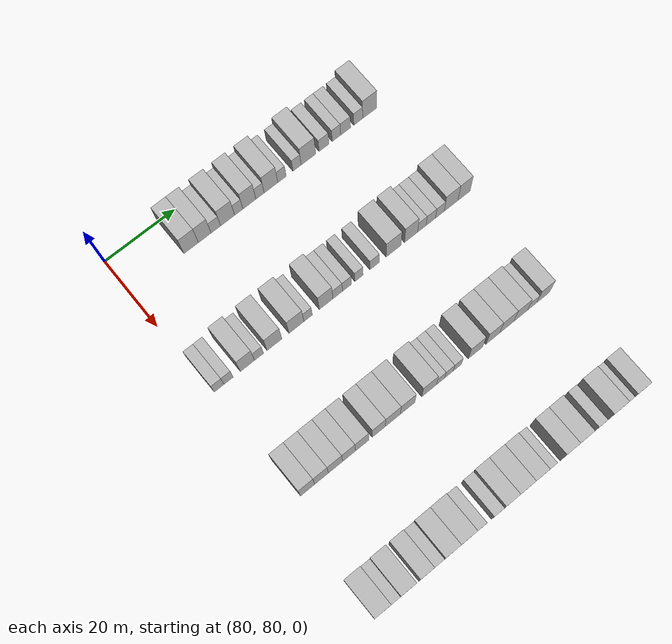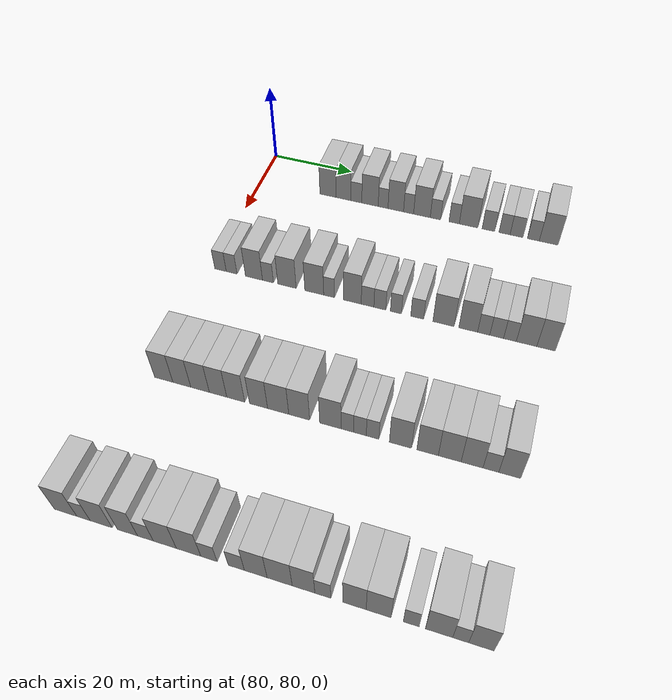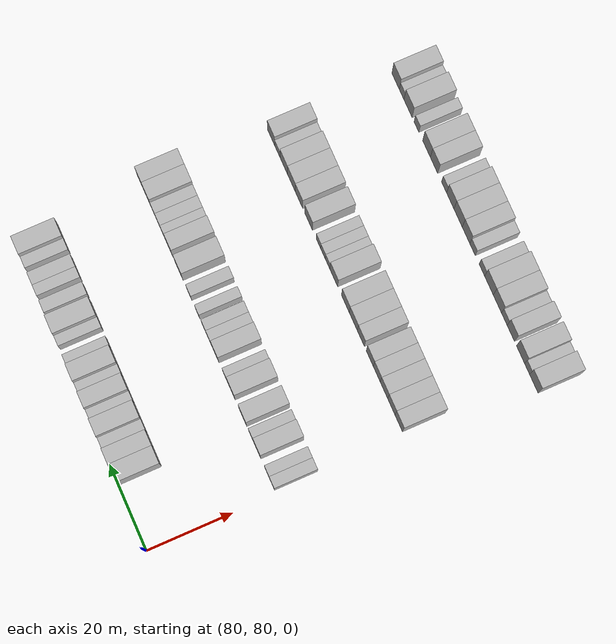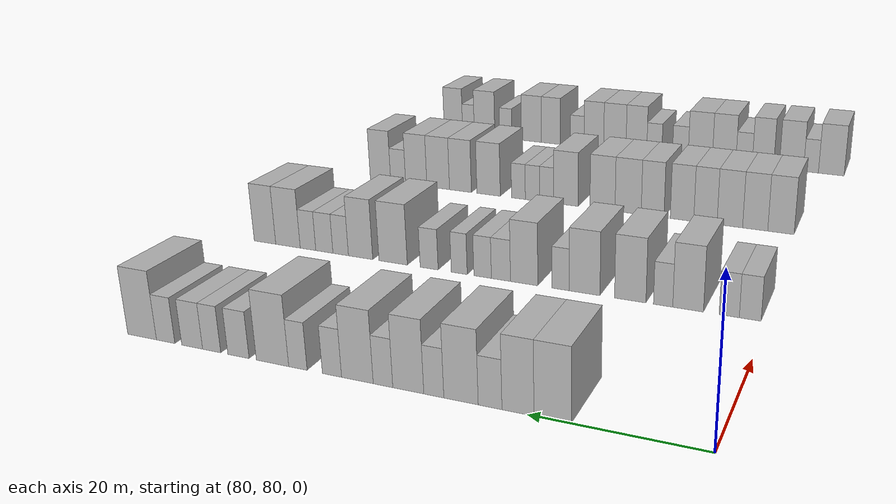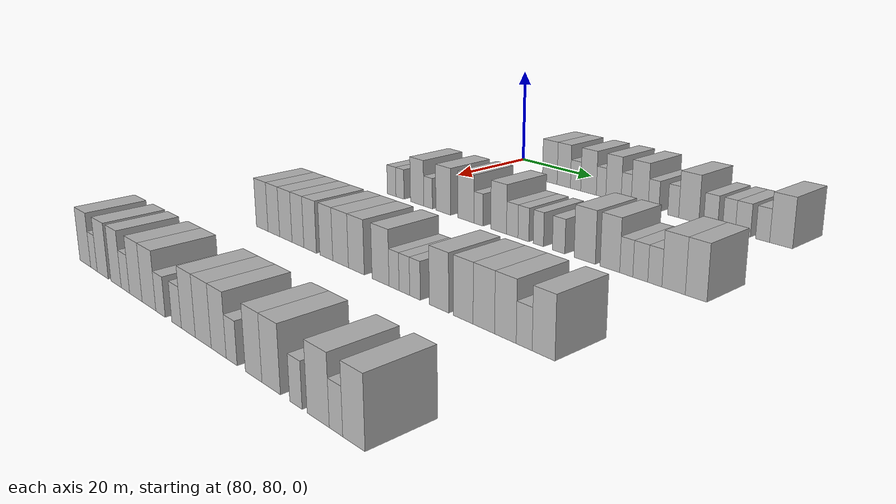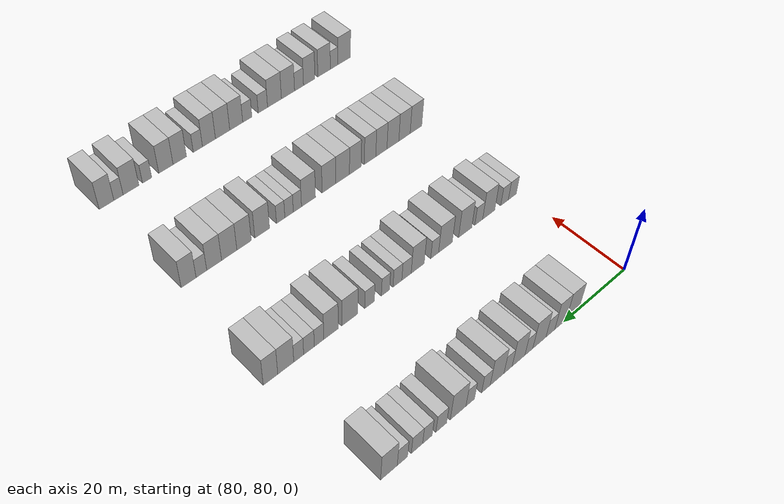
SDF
<sdf version="1.6">
 <world name="default">
  <model name="building_581">
   <static>1</static>
   <pose>85.0000 97.1983 0 0.000000 0.000000 0.000000</pose>
   <link name="link">
    <pose>0 0 4.50 0 0 0</pose>
    <collision name="collision"><geometry><box><size>10.0000 4.1444 9.0000</size></box></geometry></collision>
    <visual name="visual">
     <cast_shadows>0</cast_shadows>
     <geometry><box><size>10.0000 4.1444 9.0000</size></box></geometry>
     <material>
      <script>
       <uri>model://HANNAS_wall/materials/scripts</uri>
       <uri>model://HANNAS_wall/materials/textures</uri>
       <name>vrc/HANNAS_wall</name>
      </script>
     </material>
    </visual>
   </link>
  </model>
  <model name="building_582">
   <static>1</static>
   <pose>85.0000 101.0959 0 0.000000 0.000000 0.000000</pose>
   <link name="link">
    <pose>0 0 4.50 0 0 0</pose>
    <collision name="collision"><geometry><box><size>10.0000 3.6508 9.0000</size></box></geometry></collision>
    <visual name="visual">
     <cast_shadows>0</cast_shadows>
     <geometry><box><size>10.0000 3.6508 9.0000</size></box></geometry>
     <material>
      <script>
       <uri>model://HANNAS_wall/materials/scripts</uri>
       <uri>model://HANNAS_wall/materials/textures</uri>
       <name>vrc/HANNAS_wall</name>
      </script>
     </material>
    </visual>
   </link>
  </model>
  <model name="building_583">
   <static>1</static>
   <pose>85.0000 104.2976 0 0.000000 0.000000 0.000000</pose>
   <link name="link">
    <pose>0 0 3.00 0 0 0</pose>
    <collision name="collision"><geometry><box><size>10.0000 2.7526 6.0000</size></box></geometry></collision>
    <visual name="visual">
     <cast_shadows>0</cast_shadows>
     <geometry><box><size>10.0000 2.7526 6.0000</size></box></geometry>
     <material>
      <script>
       <uri>model://HANNAS_wall/materials/scripts</uri>
       <uri>model://HANNAS_wall/materials/textures</uri>
       <name>vrc/HANNAS_wall</name>
      </script>
     </material>
    </visual>
   </link>
  </model>
  <model name="building_584">
   <static>1</static>
   <pose>85.0000 107.7119 0 0.000000 0.000000 0.000000</pose>
   <link name="link">
    <pose>0 0 4.50 0 0 0</pose>
    <collision name="collision"><geometry><box><size>10.0000 4.0760 9.0000</size></box></geometry></collision>
    <visual name="visual">
     <cast_shadows>0</cast_shadows>
     <geometry><box><size>10.0000 4.0760 9.0000</size></box></geometry>
     <material>
      <script>
       <uri>model://HANNAS_wall/materials/scripts</uri>
       <uri>model://HANNAS_wall/materials/textures</uri>
       <name>vrc/HANNAS_wall</name>
      </script>
     </material>
    </visual>
   </link>
  </model>
  <model name="building_585">
   <static>1</static>
   <pose>85.0000 110.9563 0 0.000000 0.000000 0.000000</pose>
   <link name="link">
    <pose>0 0 3.00 0 0 0</pose>
    <collision name="collision"><geometry><box><size>10.0000 2.4129 6.0000</size></box></geometry></collision>
    <visual name="visual">
     <cast_shadows>0</cast_shadows>
     <geometry><box><size>10.0000 2.4129 6.0000</size></box></geometry>
     <material>
      <script>
       <uri>model://HANNAS_wall/materials/scripts</uri>
       <uri>model://HANNAS_wall/materials/textures</uri>
       <name>vrc/HANNAS_wall</name>
      </script>
     </material>
    </visual>
   </link>
  </model>
  <model name="building_586">
   <static>1</static>
   <pose>85.0000 114.0671 0 0.000000 0.000000 0.000000</pose>
   <link name="link">
    <pose>0 0 4.50 0 0 0</pose>
    <collision name="collision"><geometry><box><size>10.0000 3.8086 9.0000</size></box></geometry></collision>
    <visual name="visual">
     <cast_shadows>0</cast_shadows>
     <geometry><box><size>10.0000 3.8086 9.0000</size></box></geometry>
     <material>
      <script>
       <uri>model://HANNAS_wall/materials/scripts</uri>
       <uri>model://HANNAS_wall/materials/textures</uri>
       <name>vrc/HANNAS_wall</name>
      </script>
     </material>
    </visual>
   </link>
  </model>
  <model name="building_587">
   <static>1</static>
   <pose>85.0000 117.1927 0 0.000000 0.000000 0.000000</pose>
   <link name="link">
    <pose>0 0 3.00 0 0 0</pose>
    <collision name="collision"><geometry><box><size>10.0000 2.4426 6.0000</size></box></geometry></collision>
    <visual name="visual">
     <cast_shadows>0</cast_shadows>
     <geometry><box><size>10.0000 2.4426 6.0000</size></box></geometry>
     <material>
      <script>
       <uri>model://HANNAS_wall/materials/scripts</uri>
       <uri>model://HANNAS_wall/materials/textures</uri>
       <name>vrc/HANNAS_wall</name>
      </script>
     </material>
    </visual>
   </link>
  </model>
  <model name="building_588">
   <static>1</static>
   <pose>85.0000 120.4282 0 0.000000 0.000000 0.000000</pose>
   <link name="link">
    <pose>0 0 4.50 0 0 0</pose>
    <collision name="collision"><geometry><box><size>10.0000 4.0283 9.0000</size></box></geometry></collision>
    <visual name="visual">
     <cast_shadows>0</cast_shadows>
     <geometry><box><size>10.0000 4.0283 9.0000</size></box></geometry>
     <material>
      <script>
       <uri>model://HANNAS_wall/materials/scripts</uri>
       <uri>model://HANNAS_wall/materials/textures</uri>
       <name>vrc/HANNAS_wall</name>
      </script>
     </material>
    </visual>
   </link>
  </model>
  <model name="building_589">
   <static>1</static>
   <pose>85.0000 123.6835 0 0.000000 0.000000 0.000000</pose>
   <link name="link">
    <pose>0 0 3.00 0 0 0</pose>
    <collision name="collision"><geometry><box><size>10.0000 2.4823 6.0000</size></box></geometry></collision>
    <visual name="visual">
     <cast_shadows>0</cast_shadows>
     <geometry><box><size>10.0000 2.4823 6.0000</size></box></geometry>
     <material>
      <script>
       <uri>model://HANNAS_wall/materials/scripts</uri>
       <uri>model://HANNAS_wall/materials/textures</uri>
       <name>vrc/HANNAS_wall</name>
      </script>
     </material>
    </visual>
   </link>
  </model>
  <model name="building_590">
   <static>1</static>
   <pose>85.0000 128.1484 0 0.000000 0.000000 0.000000</pose>
   <link name="link">
    <pose>0 0 3.00 0 0 0</pose>
    <collision name="collision"><geometry><box><size>10.0000 2.4476 6.0000</size></box></geometry></collision>
    <visual name="visual">
     <cast_shadows>0</cast_shadows>
     <geometry><box><size>10.0000 2.4476 6.0000</size></box></geometry>
     <material>
      <script>
       <uri>model://HANNAS_wall/materials/scripts</uri>
       <uri>model://HANNAS_wall/materials/textures</uri>
       <name>vrc/HANNAS_wall</name>
      </script>
     </material>
    </visual>
   </link>
  </model>
  <model name="building_591">
   <static>1</static>
   <pose>85.0000 131.5574 0 0.000000 0.000000 0.000000</pose>
   <link name="link">
    <pose>0 0 4.50 0 0 0</pose>
    <collision name="collision"><geometry><box><size>10.0000 4.3704 9.0000</size></box></geometry></collision>
    <visual name="visual">
     <cast_shadows>0</cast_shadows>
     <geometry><box><size>10.0000 4.3704 9.0000</size></box></geometry>
     <material>
      <script>
       <uri>model://HANNAS_wall/materials/scripts</uri>
       <uri>model://HANNAS_wall/materials/textures</uri>
       <name>vrc/HANNAS_wall</name>
      </script>
     </material>
    </visual>
   </link>
  </model>
  <model name="building_592">
   <static>1</static>
   <pose>85.0000 136.2152 0 0.000000 0.000000 0.000000</pose>
   <link name="link">
    <pose>0 0 3.00 0 0 0</pose>
    <collision name="collision"><geometry><box><size>10.0000 2.9452 6.0000</size></box></geometry></collision>
    <visual name="visual">
     <cast_shadows>0</cast_shadows>
     <geometry><box><size>10.0000 2.9452 6.0000</size></box></geometry>
     <material>
      <script>
       <uri>model://HANNAS_wall/materials/scripts</uri>
       <uri>model://HANNAS_wall/materials/textures</uri>
       <name>vrc/HANNAS_wall</name>
      </script>
     </material>
    </visual>
   </link>
  </model>
  <model name="building_593">
   <static>1</static>
   <pose>85.0000 139.9684 0 0.000000 0.000000 0.000000</pose>
   <link name="link">
    <pose>0 0 3.00 0 0 0</pose>
    <collision name="collision"><geometry><box><size>10.0000 2.5612 6.0000</size></box></geometry></collision>
    <visual name="visual">
     <cast_shadows>0</cast_shadows>
     <geometry><box><size>10.0000 2.5612 6.0000</size></box></geometry>
     <material>
      <script>
       <uri>model://HANNAS_wall/materials/scripts</uri>
       <uri>model://HANNAS_wall/materials/textures</uri>
       <name>vrc/HANNAS_wall</name>
      </script>
     </material>
    </visual>
   </link>
  </model>
  <model name="building_594">
   <static>1</static>
   <pose>85.0000 142.7461 0 0.000000 0.000000 0.000000</pose>
   <link name="link">
    <pose>0 0 3.00 0 0 0</pose>
    <collision name="collision"><geometry><box><size>10.0000 2.9942 6.0000</size></box></geometry></collision>
    <visual name="visual">
     <cast_shadows>0</cast_shadows>
     <geometry><box><size>10.0000 2.9942 6.0000</size></box></geometry>
     <material>
      <script>
       <uri>model://HANNAS_wall/materials/scripts</uri>
       <uri>model://HANNAS_wall/materials/textures</uri>
       <name>vrc/HANNAS_wall</name>
      </script>
     </material>
    </visual>
   </link>
  </model>
  <model name="building_595">
   <static>1</static>
   <pose>85.0000 146.5897 0 0.000000 0.000000 0.000000</pose>
   <link name="link">
    <pose>0 0 3.00 0 0 0</pose>
    <collision name="collision"><geometry><box><size>10.0000 2.6931 6.0000</size></box></geometry></collision>
    <visual name="visual">
     <cast_shadows>0</cast_shadows>
     <geometry><box><size>10.0000 2.6931 6.0000</size></box></geometry>
     <material>
      <script>
       <uri>model://HANNAS_wall/materials/scripts</uri>
       <uri>model://HANNAS_wall/materials/textures</uri>
       <name>vrc/HANNAS_wall</name>
      </script>
     </material>
    </visual>
   </link>
  </model>
  <model name="building_596">
   <static>1</static>
   <pose>85.0000 150.0692 0 0.000000 0.000000 0.000000</pose>
   <link name="link">
    <pose>0 0 4.50 0 0 0</pose>
    <collision name="collision"><geometry><box><size>10.0000 4.2658 9.0000</size></box></geometry></collision>
    <visual name="visual">
     <cast_shadows>0</cast_shadows>
     <geometry><box><size>10.0000 4.2658 9.0000</size></box></geometry>
     <material>
      <script>
       <uri>model://HANNAS_wall/materials/scripts</uri>
       <uri>model://HANNAS_wall/materials/textures</uri>
       <name>vrc/HANNAS_wall</name>
      </script>
     </material>
    </visual>
   </link>
  </model>
  <model name="building_800">
   <static>1</static>
   <pose>115.0000 82.2061 0 0.000000 0.000000 0.000000</pose>
   <link name="link">
    <pose>0 0 3.00 0 0 0</pose>
    <collision name="collision"><geometry><box><size>10.0000 2.7353 6.0000</size></box></geometry></collision>
    <visual name="visual">
     <cast_shadows>0</cast_shadows>
     <geometry><box><size>10.0000 2.7353 6.0000</size></box></geometry>
     <material>
      <script>
       <uri>model://HANNAS_wall/materials/scripts</uri>
       <uri>model://HANNAS_wall/materials/textures</uri>
       <name>vrc/HANNAS_wall</name>
      </script>
     </material>
    </visual>
   </link>
  </model>
  <model name="building_801">
   <static>1</static>
   <pose>115.0000 84.8523 0 0.000000 0.000000 0.000000</pose>
   <link name="link">
    <pose>0 0 3.00 0 0 0</pose>
    <collision name="collision"><geometry><box><size>10.0000 2.5571 6.0000</size></box></geometry></collision>
    <visual name="visual">
     <cast_shadows>0</cast_shadows>
     <geometry><box><size>10.0000 2.5571 6.0000</size></box></geometry>
     <material>
      <script>
       <uri>model://HANNAS_wall/materials/scripts</uri>
       <uri>model://HANNAS_wall/materials/textures</uri>
       <name>vrc/HANNAS_wall</name>
      </script>
     </material>
    </visual>
   </link>
  </model>
  <model name="building_802">
   <static>1</static>
   <pose>115.0000 90.1282 0 0.000000 0.000000 0.000000</pose>
   <link name="link">
    <pose>0 0 4.50 0 0 0</pose>
    <collision name="collision"><geometry><box><size>10.0000 3.9948 9.0000</size></box></geometry></collision>
    <visual name="visual">
     <cast_shadows>0</cast_shadows>
     <geometry><box><size>10.0000 3.9948 9.0000</size></box></geometry>
     <material>
      <script>
       <uri>model://HANNAS_wall/materials/scripts</uri>
       <uri>model://HANNAS_wall/materials/textures</uri>
       <name>vrc/HANNAS_wall</name>
      </script>
     </material>
    </visual>
   </link>
  </model>
  <model name="building_803">
   <static>1</static>
   <pose>115.0000 93.4018 0 0.000000 0.000000 0.000000</pose>
   <link name="link">
    <pose>0 0 3.00 0 0 0</pose>
    <collision name="collision"><geometry><box><size>10.0000 2.5523 6.0000</size></box></geometry></collision>
    <visual name="visual">
     <cast_shadows>0</cast_shadows>
     <geometry><box><size>10.0000 2.5523 6.0000</size></box></geometry>
     <material>
      <script>
       <uri>model://HANNAS_wall/materials/scripts</uri>
       <uri>model://HANNAS_wall/materials/textures</uri>
       <name>vrc/HANNAS_wall</name>
      </script>
     </material>
    </visual>
   </link>
  </model>
  <model name="building_804">
   <static>1</static>
   <pose>115.0000 97.7947 0 0.000000 0.000000 0.000000</pose>
   <link name="link">
    <pose>0 0 4.50 0 0 0</pose>
    <collision name="collision"><geometry><box><size>10.0000 4.2335 9.0000</size></box></geometry></collision>
    <visual name="visual">
     <cast_shadows>0</cast_shadows>
     <geometry><box><size>10.0000 4.2335 9.0000</size></box></geometry>
     <material>
      <script>
       <uri>model://HANNAS_wall/materials/scripts</uri>
       <uri>model://HANNAS_wall/materials/textures</uri>
       <name>vrc/HANNAS_wall</name>
      </script>
     </material>
    </visual>
   </link>
  </model>
  <model name="building_805">
   <static>1</static>
   <pose>115.0000 104.0559 0 0.000000 0.000000 0.000000</pose>
   <link name="link">
    <pose>0 0 4.50 0 0 0</pose>
    <collision name="collision"><geometry><box><size>10.0000 4.2888 9.0000</size></box></geometry></collision>
    <visual name="visual">
     <cast_shadows>0</cast_shadows>
     <geometry><box><size>10.0000 4.2888 9.0000</size></box></geometry>
     <material>
      <script>
       <uri>model://HANNAS_wall/materials/scripts</uri>
       <uri>model://HANNAS_wall/materials/textures</uri>
       <name>vrc/HANNAS_wall</name>
      </script>
     </material>
    </visual>
   </link>
  </model>
  <model name="building_806">
   <static>1</static>
   <pose>115.0000 107.4186 0 0.000000 0.000000 0.000000</pose>
   <link name="link">
    <pose>0 0 3.00 0 0 0</pose>
    <collision name="collision"><geometry><box><size>10.0000 2.4366 6.0000</size></box></geometry></collision>
    <visual name="visual">
     <cast_shadows>0</cast_shadows>
     <geometry><box><size>10.0000 2.4366 6.0000</size></box></geometry>
     <material>
      <script>
       <uri>model://HANNAS_wall/materials/scripts</uri>
       <uri>model://HANNAS_wall/materials/textures</uri>
       <name>vrc/HANNAS_wall</name>
      </script>
     </material>
    </visual>
   </link>
  </model>
  <model name="building_807">
   <static>1</static>
   <pose>115.0000 112.6143 0 0.000000 0.000000 0.000000</pose>
   <link name="link">
    <pose>0 0 4.50 0 0 0</pose>
    <collision name="collision"><geometry><box><size>10.0000 3.9548 9.0000</size></box></geometry></collision>
    <visual name="visual">
     <cast_shadows>0</cast_shadows>
     <geometry><box><size>10.0000 3.9548 9.0000</size></box></geometry>
     <material>
      <script>
       <uri>model://HANNAS_wall/materials/scripts</uri>
       <uri>model://HANNAS_wall/materials/textures</uri>
       <name>vrc/HANNAS_wall</name>
      </script>
     </material>
    </visual>
   </link>
  </model>
  <model name="building_808">
   <static>1</static>
   <pose>115.0000 115.9929 0 0.000000 0.000000 0.000000</pose>
   <link name="link">
    <pose>0 0 3.00 0 0 0</pose>
    <collision name="collision"><geometry><box><size>10.0000 2.8022 6.0000</size></box></geometry></collision>
    <visual name="visual">
     <cast_shadows>0</cast_shadows>
     <geometry><box><size>10.0000 2.8022 6.0000</size></box></geometry>
     <material>
      <script>
       <uri>model://HANNAS_wall/materials/scripts</uri>
       <uri>model://HANNAS_wall/materials/textures</uri>
       <name>vrc/HANNAS_wall</name>
      </script>
     </material>
    </visual>
   </link>
  </model>
  <model name="building_809">
   <static>1</static>
   <pose>115.0000 118.6966 0 0.000000 0.000000 0.000000</pose>
   <link name="link">
    <pose>0 0 3.00 0 0 0</pose>
    <collision name="collision"><geometry><box><size>10.0000 2.6054 6.0000</size></box></geometry></collision>
    <visual name="visual">
     <cast_shadows>0</cast_shadows>
     <geometry><box><size>10.0000 2.6054 6.0000</size></box></geometry>
     <material>
      <script>
       <uri>model://HANNAS_wall/materials/scripts</uri>
       <uri>model://HANNAS_wall/materials/textures</uri>
       <name>vrc/HANNAS_wall</name>
      </script>
     </material>
    </visual>
   </link>
  </model>
  <model name="building_810">
   <static>1</static>
   <pose>115.0000 122.2053 0 0.000000 0.000000 0.000000</pose>
   <link name="link">
    <pose>0 0 3.00 0 0 0</pose>
    <collision name="collision"><geometry><box><size>10.0000 2.4119 6.0000</size></box></geometry></collision>
    <visual name="visual">
     <cast_shadows>0</cast_shadows>
     <geometry><box><size>10.0000 2.4119 6.0000</size></box></geometry>
     <material>
      <script>
       <uri>model://HANNAS_wall/materials/scripts</uri>
       <uri>model://HANNAS_wall/materials/textures</uri>
       <name>vrc/HANNAS_wall</name>
      </script>
     </material>
    </visual>
   </link>
  </model>
  <model name="building_811">
   <static>1</static>
   <pose>115.0000 126.7994 0 0.000000 0.000000 0.000000</pose>
   <link name="link">
    <pose>0 0 3.00 0 0 0</pose>
    <collision name="collision"><geometry><box><size>10.0000 2.7763 6.0000</size></box></geometry></collision>
    <visual name="visual">
     <cast_shadows>0</cast_shadows>
     <geometry><box><size>10.0000 2.7763 6.0000</size></box></geometry>
     <material>
      <script>
       <uri>model://HANNAS_wall/materials/scripts</uri>
       <uri>model://HANNAS_wall/materials/textures</uri>
       <name>vrc/HANNAS_wall</name>
      </script>
     </material>
    </visual>
   </link>
  </model>
  <model name="building_812">
   <static>1</static>
   <pose>115.0000 132.4303 0 0.000000 0.000000 0.000000</pose>
   <link name="link">
    <pose>0 0 4.50 0 0 0</pose>
    <collision name="collision"><geometry><box><size>10.0000 4.4856 9.0000</size></box></geometry></collision>
    <visual name="visual">
     <cast_shadows>0</cast_shadows>
     <geometry><box><size>10.0000 4.4856 9.0000</size></box></geometry>
     <material>
      <script>
       <uri>model://HANNAS_wall/materials/scripts</uri>
       <uri>model://HANNAS_wall/materials/textures</uri>
       <name>vrc/HANNAS_wall</name>
      </script>
     </material>
    </visual>
   </link>
  </model>
  <model name="building_813">
   <static>1</static>
   <pose>115.0000 137.6419 0 0.000000 0.000000 0.000000</pose>
   <link name="link">
    <pose>0 0 4.50 0 0 0</pose>
    <collision name="collision"><geometry><box><size>10.0000 3.9376 9.0000</size></box></geometry></collision>
    <visual name="visual">
     <cast_shadows>0</cast_shadows>
     <geometry><box><size>10.0000 3.9376 9.0000</size></box></geometry>
     <material>
      <script>
       <uri>model://HANNAS_wall/materials/scripts</uri>
       <uri>model://HANNAS_wall/materials/textures</uri>
       <name>vrc/HANNAS_wall</name>
      </script>
     </material>
    </visual>
   </link>
  </model>
  <model name="building_814">
   <static>1</static>
   <pose>115.0000 140.8817 0 0.000000 0.000000 0.000000</pose>
   <link name="link">
    <pose>0 0 3.00 0 0 0</pose>
    <collision name="collision"><geometry><box><size>10.0000 2.5421 6.0000</size></box></geometry></collision>
    <visual name="visual">
     <cast_shadows>0</cast_shadows>
     <geometry><box><size>10.0000 2.5421 6.0000</size></box></geometry>
     <material>
      <script>
       <uri>model://HANNAS_wall/materials/scripts</uri>
       <uri>model://HANNAS_wall/materials/textures</uri>
       <name>vrc/HANNAS_wall</name>
      </script>
     </material>
    </visual>
   </link>
  </model>
  <model name="building_815">
   <static>1</static>
   <pose>115.0000 143.5747 0 0.000000 0.000000 0.000000</pose>
   <link name="link">
    <pose>0 0 3.00 0 0 0</pose>
    <collision name="collision"><geometry><box><size>10.0000 2.8439 6.0000</size></box></geometry></collision>
    <visual name="visual">
     <cast_shadows>0</cast_shadows>
     <geometry><box><size>10.0000 2.8439 6.0000</size></box></geometry>
     <material>
      <script>
       <uri>model://HANNAS_wall/materials/scripts</uri>
       <uri>model://HANNAS_wall/materials/textures</uri>
       <name>vrc/HANNAS_wall</name>
      </script>
     </material>
    </visual>
   </link>
  </model>
  <model name="building_816">
   <static>1</static>
   <pose>115.0000 146.3027 0 0.000000 0.000000 0.000000</pose>
   <link name="link">
    <pose>0 0 3.00 0 0 0</pose>
    <collision name="collision"><geometry><box><size>10.0000 2.6120 6.0000</size></box></geometry></collision>
    <visual name="visual">
     <cast_shadows>0</cast_shadows>
     <geometry><box><size>10.0000 2.6120 6.0000</size></box></geometry>
     <material>
      <script>
       <uri>model://HANNAS_wall/materials/scripts</uri>
       <uri>model://HANNAS_wall/materials/textures</uri>
       <name>vrc/HANNAS_wall</name>
      </script>
     </material>
    </visual>
   </link>
  </model>
  <model name="building_817">
   <static>1</static>
   <pose>115.0000 149.6972 0 0.000000 0.000000 0.000000</pose>
   <link name="link">
    <pose>0 0 4.50 0 0 0</pose>
    <collision name="collision"><geometry><box><size>10.0000 4.1771 9.0000</size></box></geometry></collision>
    <visual name="visual">
     <cast_shadows>0</cast_shadows>
     <geometry><box><size>10.0000 4.1771 9.0000</size></box></geometry>
     <material>
      <script>
       <uri>model://HANNAS_wall/materials/scripts</uri>
       <uri>model://HANNAS_wall/materials/textures</uri>
       <name>vrc/HANNAS_wall</name>
      </script>
     </material>
    </visual>
   </link>
  </model>
  <model name="building_818">
   <static>1</static>
   <pose>115.0000 153.6468 0 0.000000 0.000000 0.000000</pose>
   <link name="link">
    <pose>0 0 4.50 0 0 0</pose>
    <collision name="collision"><geometry><box><size>10.0000 3.7222 9.0000</size></box></geometry></collision>
    <visual name="visual">
     <cast_shadows>0</cast_shadows>
     <geometry><box><size>10.0000 3.7222 9.0000</size></box></geometry>
     <material>
      <script>
       <uri>model://HANNAS_wall/materials/scripts</uri>
       <uri>model://HANNAS_wall/materials/textures</uri>
       <name>vrc/HANNAS_wall</name>
      </script>
     </material>
    </visual>
   </link>
  </model>
  <model name="building_1021">
   <static>1</static>
   <pose>145.0000 83.2522 0 0.000000 0.000000 0.000000</pose>
   <link name="link">
    <pose>0 0 4.50 0 0 0</pose>
    <collision name="collision"><geometry><box><size>10.0000 3.9444 9.0000</size></box></geometry></collision>
    <visual name="visual">
     <cast_shadows>0</cast_shadows>
     <geometry><box><size>10.0000 3.9444 9.0000</size></box></geometry>
     <material>
      <script>
       <uri>model://HANNAS_wall/materials/scripts</uri>
       <uri>model://HANNAS_wall/materials/textures</uri>
       <name>vrc/HANNAS_wall</name>
      </script>
     </material>
    </visual>
   </link>
  </model>
  <model name="building_1022">
   <static>1</static>
   <pose>145.0000 87.1303 0 0.000000 0.000000 0.000000</pose>
   <link name="link">
    <pose>0 0 4.50 0 0 0</pose>
    <collision name="collision"><geometry><box><size>10.0000 3.8118 9.0000</size></box></geometry></collision>
    <visual name="visual">
     <cast_shadows>0</cast_shadows>
     <geometry><box><size>10.0000 3.8118 9.0000</size></box></geometry>
     <material>
      <script>
       <uri>model://HANNAS_wall/materials/scripts</uri>
       <uri>model://HANNAS_wall/materials/textures</uri>
       <name>vrc/HANNAS_wall</name>
      </script>
     </material>
    </visual>
   </link>
  </model>
  <model name="building_1023">
   <static>1</static>
   <pose>145.0000 91.0033 0 0.000000 0.000000 0.000000</pose>
   <link name="link">
    <pose>0 0 4.50 0 0 0</pose>
    <collision name="collision"><geometry><box><size>10.0000 3.9341 9.0000</size></box></geometry></collision>
    <visual name="visual">
     <cast_shadows>0</cast_shadows>
     <geometry><box><size>10.0000 3.9341 9.0000</size></box></geometry>
     <material>
      <script>
       <uri>model://HANNAS_wall/materials/scripts</uri>
       <uri>model://HANNAS_wall/materials/textures</uri>
       <name>vrc/HANNAS_wall</name>
      </script>
     </material>
    </visual>
   </link>
  </model>
  <model name="building_1024">
   <static>1</static>
   <pose>145.0000 94.7915 0 0.000000 0.000000 0.000000</pose>
   <link name="link">
    <pose>0 0 4.50 0 0 0</pose>
    <collision name="collision"><geometry><box><size>10.0000 3.6425 9.0000</size></box></geometry></collision>
    <visual name="visual">
     <cast_shadows>0</cast_shadows>
     <geometry><box><size>10.0000 3.6425 9.0000</size></box></geometry>
     <material>
      <script>
       <uri>model://HANNAS_wall/materials/scripts</uri>
       <uri>model://HANNAS_wall/materials/textures</uri>
       <name>vrc/HANNAS_wall</name>
      </script>
     </material>
    </visual>
   </link>
  </model>
  <model name="building_1025">
   <static>1</static>
   <pose>145.0000 98.4766 0 0.000000 0.000000 0.000000</pose>
   <link name="link">
    <pose>0 0 4.50 0 0 0</pose>
    <collision name="collision"><geometry><box><size>10.0000 3.7275 9.0000</size></box></geometry></collision>
    <visual name="visual">
     <cast_shadows>0</cast_shadows>
     <geometry><box><size>10.0000 3.7275 9.0000</size></box></geometry>
     <material>
      <script>
       <uri>model://HANNAS_wall/materials/scripts</uri>
       <uri>model://HANNAS_wall/materials/textures</uri>
       <name>vrc/HANNAS_wall</name>
      </script>
     </material>
    </visual>
   </link>
  </model>
  <model name="building_1026">
   <static>1</static>
   <pose>145.0000 103.1838 0 0.000000 0.000000 0.000000</pose>
   <link name="link">
    <pose>0 0 4.50 0 0 0</pose>
    <collision name="collision"><geometry><box><size>10.0000 3.6869 9.0000</size></box></geometry></collision>
    <visual name="visual">
     <cast_shadows>0</cast_shadows>
     <geometry><box><size>10.0000 3.6869 9.0000</size></box></geometry>
     <material>
      <script>
       <uri>model://HANNAS_wall/materials/scripts</uri>
       <uri>model://HANNAS_wall/materials/textures</uri>
       <name>vrc/HANNAS_wall</name>
      </script>
     </material>
    </visual>
   </link>
  </model>
  <model name="building_1027">
   <static>1</static>
   <pose>145.0000 107.1738 0 0.000000 0.000000 0.000000</pose>
   <link name="link">
    <pose>0 0 4.50 0 0 0</pose>
    <collision name="collision"><geometry><box><size>10.0000 4.2933 9.0000</size></box></geometry></collision>
    <visual name="visual">
     <cast_shadows>0</cast_shadows>
     <geometry><box><size>10.0000 4.2933 9.0000</size></box></geometry>
     <material>
      <script>
       <uri>model://HANNAS_wall/materials/scripts</uri>
       <uri>model://HANNAS_wall/materials/textures</uri>
       <name>vrc/HANNAS_wall</name>
      </script>
     </material>
    </visual>
   </link>
  </model>
  <model name="building_1028">
   <static>1</static>
   <pose>145.0000 111.4127 0 0.000000 0.000000 0.000000</pose>
   <link name="link">
    <pose>0 0 4.50 0 0 0</pose>
    <collision name="collision"><geometry><box><size>10.0000 4.1844 9.0000</size></box></geometry></collision>
    <visual name="visual">
     <cast_shadows>0</cast_shadows>
     <geometry><box><size>10.0000 4.1844 9.0000</size></box></geometry>
     <material>
      <script>
       <uri>model://HANNAS_wall/materials/scripts</uri>
       <uri>model://HANNAS_wall/materials/textures</uri>
       <name>vrc/HANNAS_wall</name>
      </script>
     </material>
    </visual>
   </link>
  </model>
  <model name="building_1029">
   <static>1</static>
   <pose>145.0000 117.6127 0 0.000000 0.000000 0.000000</pose>
   <link name="link">
    <pose>0 0 4.50 0 0 0</pose>
    <collision name="collision"><geometry><box><size>10.0000 4.2157 9.0000</size></box></geometry></collision>
    <visual name="visual">
     <cast_shadows>0</cast_shadows>
     <geometry><box><size>10.0000 4.2157 9.0000</size></box></geometry>
     <material>
      <script>
       <uri>model://HANNAS_wall/materials/scripts</uri>
       <uri>model://HANNAS_wall/materials/textures</uri>
       <name>vrc/HANNAS_wall</name>
      </script>
     </material>
    </visual>
   </link>
  </model>
  <model name="building_1030">
   <static>1</static>
   <pose>145.0000 120.9268 0 0.000000 0.000000 0.000000</pose>
   <link name="link">
    <pose>0 0 3.00 0 0 0</pose>
    <collision name="collision"><geometry><box><size>10.0000 2.4125 6.0000</size></box></geometry></collision>
    <visual name="visual">
     <cast_shadows>0</cast_shadows>
     <geometry><box><size>10.0000 2.4125 6.0000</size></box></geometry>
     <material>
      <script>
       <uri>model://HANNAS_wall/materials/scripts</uri>
       <uri>model://HANNAS_wall/materials/textures</uri>
       <name>vrc/HANNAS_wall</name>
      </script>
     </material>
    </visual>
   </link>
  </model>
  <model name="building_1031">
   <static>1</static>
   <pose>145.0000 123.3767 0 0.000000 0.000000 0.000000</pose>
   <link name="link">
    <pose>0 0 3.00 0 0 0</pose>
    <collision name="collision"><geometry><box><size>10.0000 2.4873 6.0000</size></box></geometry></collision>
    <visual name="visual">
     <cast_shadows>0</cast_shadows>
     <geometry><box><size>10.0000 2.4873 6.0000</size></box></geometry>
     <material>
      <script>
       <uri>model://HANNAS_wall/materials/scripts</uri>
       <uri>model://HANNAS_wall/materials/textures</uri>
       <name>vrc/HANNAS_wall</name>
      </script>
     </material>
    </visual>
   </link>
  </model>
  <model name="building_1032">
   <static>1</static>
   <pose>145.0000 125.8378 0 0.000000 0.000000 0.000000</pose>
   <link name="link">
    <pose>0 0 3.00 0 0 0</pose>
    <collision name="collision"><geometry><box><size>10.0000 2.4348 6.0000</size></box></geometry></collision>
    <visual name="visual">
     <cast_shadows>0</cast_shadows>
     <geometry><box><size>10.0000 2.4348 6.0000</size></box></geometry>
     <material>
      <script>
       <uri>model://HANNAS_wall/materials/scripts</uri>
       <uri>model://HANNAS_wall/materials/textures</uri>
       <name>vrc/HANNAS_wall</name>
      </script>
     </material>
    </visual>
   </link>
  </model>
  <model name="building_1033">
   <static>1</static>
   <pose>145.0000 131.1592 0 0.000000 0.000000 0.000000</pose>
   <link name="link">
    <pose>0 0 4.50 0 0 0</pose>
    <collision name="collision"><geometry><box><size>10.0000 4.2081 9.0000</size></box></geometry></collision>
    <visual name="visual">
     <cast_shadows>0</cast_shadows>
     <geometry><box><size>10.0000 4.2081 9.0000</size></box></geometry>
     <material>
      <script>
       <uri>model://HANNAS_wall/materials/scripts</uri>
       <uri>model://HANNAS_wall/materials/textures</uri>
       <name>vrc/HANNAS_wall</name>
      </script>
     </material>
    </visual>
   </link>
  </model>
  <model name="building_1034">
   <static>1</static>
   <pose>145.0000 136.2742 0 0.000000 0.000000 0.000000</pose>
   <link name="link">
    <pose>0 0 4.50 0 0 0</pose>
    <collision name="collision"><geometry><box><size>10.0000 4.0219 9.0000</size></box></geometry></collision>
    <visual name="visual">
     <cast_shadows>0</cast_shadows>
     <geometry><box><size>10.0000 4.0219 9.0000</size></box></geometry>
     <material>
      <script>
       <uri>model://HANNAS_wall/materials/scripts</uri>
       <uri>model://HANNAS_wall/materials/textures</uri>
       <name>vrc/HANNAS_wall</name>
      </script>
     </material>
    </visual>
   </link>
  </model>
  <model name="building_1035">
   <static>1</static>
   <pose>145.0000 140.3916 0 0.000000 0.000000 0.000000</pose>
   <link name="link">
    <pose>0 0 4.50 0 0 0</pose>
    <collision name="collision"><geometry><box><size>10.0000 4.2128 9.0000</size></box></geometry></collision>
    <visual name="visual">
     <cast_shadows>0</cast_shadows>
     <geometry><box><size>10.0000 4.2128 9.0000</size></box></geometry>
     <material>
      <script>
       <uri>model://HANNAS_wall/materials/scripts</uri>
       <uri>model://HANNAS_wall/materials/textures</uri>
       <name>vrc/HANNAS_wall</name>
      </script>
     </material>
    </visual>
   </link>
  </model>
  <model name="building_1036">
   <static>1</static>
   <pose>145.0000 144.5107 0 0.000000 0.000000 0.000000</pose>
   <link name="link">
    <pose>0 0 4.50 0 0 0</pose>
    <collision name="collision"><geometry><box><size>10.0000 4.0253 9.0000</size></box></geometry></collision>
    <visual name="visual">
     <cast_shadows>0</cast_shadows>
     <geometry><box><size>10.0000 4.0253 9.0000</size></box></geometry>
     <material>
      <script>
       <uri>model://HANNAS_wall/materials/scripts</uri>
       <uri>model://HANNAS_wall/materials/textures</uri>
       <name>vrc/HANNAS_wall</name>
      </script>
     </material>
    </visual>
   </link>
  </model>
  <model name="building_1037">
   <static>1</static>
   <pose>145.0000 147.9542 0 0.000000 0.000000 0.000000</pose>
   <link name="link">
    <pose>0 0 3.00 0 0 0</pose>
    <collision name="collision"><geometry><box><size>10.0000 2.8619 6.0000</size></box></geometry></collision>
    <visual name="visual">
     <cast_shadows>0</cast_shadows>
     <geometry><box><size>10.0000 2.8619 6.0000</size></box></geometry>
     <material>
      <script>
       <uri>model://HANNAS_wall/materials/scripts</uri>
       <uri>model://HANNAS_wall/materials/textures</uri>
       <name>vrc/HANNAS_wall</name>
      </script>
     </material>
    </visual>
   </link>
  </model>
  <model name="building_1038">
   <static>1</static>
   <pose>145.0000 151.3577 0 0.000000 0.000000 0.000000</pose>
   <link name="link">
    <pose>0 0 4.50 0 0 0</pose>
    <collision name="collision"><geometry><box><size>10.0000 3.9450 9.0000</size></box></geometry></collision>
    <visual name="visual">
     <cast_shadows>0</cast_shadows>
     <geometry><box><size>10.0000 3.9450 9.0000</size></box></geometry>
     <material>
      <script>
       <uri>model://HANNAS_wall/materials/scripts</uri>
       <uri>model://HANNAS_wall/materials/textures</uri>
       <name>vrc/HANNAS_wall</name>
      </script>
     </material>
    </visual>
   </link>
  </model>
  <model name="building_1261">
   <static>1</static>
   <pose>175.0000 79.3991 0 0.000000 0.000000 0.000000</pose>
   <link name="link">
    <pose>0 0 4.50 0 0 0</pose>
    <collision name="collision"><geometry><box><size>10.0000 4.3870 9.0000</size></box></geometry></collision>
    <visual name="visual">
     <cast_shadows>0</cast_shadows>
     <geometry><box><size>10.0000 4.3870 9.0000</size></box></geometry>
     <material>
      <script>
       <uri>model://HANNAS_wall/materials/scripts</uri>
       <uri>model://HANNAS_wall/materials/textures</uri>
       <name>vrc/HANNAS_wall</name>
      </script>
     </material>
    </visual>
   </link>
  </model>
  <model name="building_1262">
   <static>1</static>
   <pose>175.0000 82.8795 0 0.000000 0.000000 0.000000</pose>
   <link name="link">
    <pose>0 0 3.00 0 0 0</pose>
    <collision name="collision"><geometry><box><size>10.0000 2.5738 6.0000</size></box></geometry></collision>
    <visual name="visual">
     <cast_shadows>0</cast_shadows>
     <geometry><box><size>10.0000 2.5738 6.0000</size></box></geometry>
     <material>
      <script>
       <uri>model://HANNAS_wall/materials/scripts</uri>
       <uri>model://HANNAS_wall/materials/textures</uri>
       <name>vrc/HANNAS_wall</name>
      </script>
     </material>
    </visual>
   </link>
  </model>
  <model name="building_1263">
   <static>1</static>
   <pose>175.0000 86.2785 0 0.000000 0.000000 0.000000</pose>
   <link name="link">
    <pose>0 0 4.50 0 0 0</pose>
    <collision name="collision"><geometry><box><size>10.0000 4.2240 9.0000</size></box></geometry></collision>
    <visual name="visual">
     <cast_shadows>0</cast_shadows>
     <geometry><box><size>10.0000 4.2240 9.0000</size></box></geometry>
     <material>
      <script>
       <uri>model://HANNAS_wall/materials/scripts</uri>
       <uri>model://HANNAS_wall/materials/textures</uri>
       <name>vrc/HANNAS_wall</name>
      </script>
     </material>
    </visual>
   </link>
  </model>
  <model name="building_1264">
   <static>1</static>
   <pose>175.0000 91.2891 0 0.000000 0.000000 0.000000</pose>
   <link name="link">
    <pose>0 0 4.50 0 0 0</pose>
    <collision name="collision"><geometry><box><size>10.0000 3.7974 9.0000</size></box></geometry></collision>
    <visual name="visual">
     <cast_shadows>0</cast_shadows>
     <geometry><box><size>10.0000 3.7974 9.0000</size></box></geometry>
     <material>
      <script>
       <uri>model://HANNAS_wall/materials/scripts</uri>
       <uri>model://HANNAS_wall/materials/textures</uri>
       <name>vrc/HANNAS_wall</name>
      </script>
     </material>
    </visual>
   </link>
  </model>
  <model name="building_1265">
   <static>1</static>
   <pose>175.0000 94.6554 0 0.000000 0.000000 0.000000</pose>
   <link name="link">
    <pose>0 0 3.00 0 0 0</pose>
    <collision name="collision"><geometry><box><size>10.0000 2.9350 6.0000</size></box></geometry></collision>
    <visual name="visual">
     <cast_shadows>0</cast_shadows>
     <geometry><box><size>10.0000 2.9350 6.0000</size></box></geometry>
     <material>
      <script>
       <uri>model://HANNAS_wall/materials/scripts</uri>
       <uri>model://HANNAS_wall/materials/textures</uri>
       <name>vrc/HANNAS_wall</name>
      </script>
     </material>
    </visual>
   </link>
  </model>
  <model name="building_1266">
   <static>1</static>
   <pose>175.0000 98.2664 0 0.000000 0.000000 0.000000</pose>
   <link name="link">
    <pose>0 0 4.50 0 0 0</pose>
    <collision name="collision"><geometry><box><size>10.0000 4.2870 9.0000</size></box></geometry></collision>
    <visual name="visual">
     <cast_shadows>0</cast_shadows>
     <geometry><box><size>10.0000 4.2870 9.0000</size></box></geometry>
     <material>
      <script>
       <uri>model://HANNAS_wall/materials/scripts</uri>
       <uri>model://HANNAS_wall/materials/textures</uri>
       <name>vrc/HANNAS_wall</name>
      </script>
     </material>
    </visual>
   </link>
  </model>
  <model name="building_1267">
   <static>1</static>
   <pose>175.0000 102.6402 0 0.000000 0.000000 0.000000</pose>
   <link name="link">
    <pose>0 0 4.50 0 0 0</pose>
    <collision name="collision"><geometry><box><size>10.0000 4.4607 9.0000</size></box></geometry></collision>
    <visual name="visual">
     <cast_shadows>0</cast_shadows>
     <geometry><box><size>10.0000 4.4607 9.0000</size></box></geometry>
     <material>
      <script>
       <uri>model://HANNAS_wall/materials/scripts</uri>
       <uri>model://HANNAS_wall/materials/textures</uri>
       <name>vrc/HANNAS_wall</name>
      </script>
     </material>
    </visual>
   </link>
  </model>
  <model name="building_1268">
   <static>1</static>
   <pose>175.0000 106.3408 0 0.000000 0.000000 0.000000</pose>
   <link name="link">
    <pose>0 0 3.00 0 0 0</pose>
    <collision name="collision"><geometry><box><size>10.0000 2.9406 6.0000</size></box></geometry></collision>
    <visual name="visual">
     <cast_shadows>0</cast_shadows>
     <geometry><box><size>10.0000 2.9406 6.0000</size></box></geometry>
     <material>
      <script>
       <uri>model://HANNAS_wall/materials/scripts</uri>
       <uri>model://HANNAS_wall/materials/textures</uri>
       <name>vrc/HANNAS_wall</name>
      </script>
     </material>
    </visual>
   </link>
  </model>
  <model name="building_1269">
   <static>1</static>
   <pose>175.0000 111.2415 0 0.000000 0.000000 0.000000</pose>
   <link name="link">
    <pose>0 0 3.00 0 0 0</pose>
    <collision name="collision"><geometry><box><size>10.0000 2.8608 6.0000</size></box></geometry></collision>
    <visual name="visual">
     <cast_shadows>0</cast_shadows>
     <geometry><box><size>10.0000 2.8608 6.0000</size></box></geometry>
     <material>
      <script>
       <uri>model://HANNAS_wall/materials/scripts</uri>
       <uri>model://HANNAS_wall/materials/textures</uri>
       <name>vrc/HANNAS_wall</name>
      </script>
     </material>
    </visual>
   </link>
  </model>
  <model name="building_1270">
   <static>1</static>
   <pose>175.0000 114.6669 0 0.000000 0.000000 0.000000</pose>
   <link name="link">
    <pose>0 0 4.50 0 0 0</pose>
    <collision name="collision"><geometry><box><size>10.0000 3.9901 9.0000</size></box></geometry></collision>
    <visual name="visual">
     <cast_shadows>0</cast_shadows>
     <geometry><box><size>10.0000 3.9901 9.0000</size></box></geometry>
     <material>
      <script>
       <uri>model://HANNAS_wall/materials/scripts</uri>
       <uri>model://HANNAS_wall/materials/textures</uri>
       <name>vrc/HANNAS_wall</name>
      </script>
     </material>
    </visual>
   </link>
  </model>
  <model name="building_1271">
   <static>1</static>
   <pose>175.0000 118.8383 0 0.000000 0.000000 0.000000</pose>
   <link name="link">
    <pose>0 0 4.50 0 0 0</pose>
    <collision name="collision"><geometry><box><size>10.0000 4.3527 9.0000</size></box></geometry></collision>
    <visual name="visual">
     <cast_shadows>0</cast_shadows>
     <geometry><box><size>10.0000 4.3527 9.0000</size></box></geometry>
     <material>
      <script>
       <uri>model://HANNAS_wall/materials/scripts</uri>
       <uri>model://HANNAS_wall/materials/textures</uri>
       <name>vrc/HANNAS_wall</name>
      </script>
     </material>
    </visual>
   </link>
  </model>
  <model name="building_1272">
   <static>1</static>
   <pose>175.0000 122.9548 0 0.000000 0.000000 0.000000</pose>
   <link name="link">
    <pose>0 0 4.50 0 0 0</pose>
    <collision name="collision"><geometry><box><size>10.0000 3.8804 9.0000</size></box></geometry></collision>
    <visual name="visual">
     <cast_shadows>0</cast_shadows>
     <geometry><box><size>10.0000 3.8804 9.0000</size></box></geometry>
     <material>
      <script>
       <uri>model://HANNAS_wall/materials/scripts</uri>
       <uri>model://HANNAS_wall/materials/textures</uri>
       <name>vrc/HANNAS_wall</name>
      </script>
     </material>
    </visual>
   </link>
  </model>
  <model name="building_1273">
   <static>1</static>
   <pose>175.0000 126.2548 0 0.000000 0.000000 0.000000</pose>
   <link name="link">
    <pose>0 0 3.00 0 0 0</pose>
    <collision name="collision"><geometry><box><size>10.0000 2.7195 6.0000</size></box></geometry></collision>
    <visual name="visual">
     <cast_shadows>0</cast_shadows>
     <geometry><box><size>10.0000 2.7195 6.0000</size></box></geometry>
     <material>
      <script>
       <uri>model://HANNAS_wall/materials/scripts</uri>
       <uri>model://HANNAS_wall/materials/textures</uri>
       <name>vrc/HANNAS_wall</name>
      </script>
     </material>
    </visual>
   </link>
  </model>
  <model name="building_1274">
   <static>1</static>
   <pose>175.0000 131.5597 0 0.000000 0.000000 0.000000</pose>
   <link name="link">
    <pose>0 0 4.50 0 0 0</pose>
    <collision name="collision"><geometry><box><size>10.0000 3.8903 9.0000</size></box></geometry></collision>
    <visual name="visual">
     <cast_shadows>0</cast_shadows>
     <geometry><box><size>10.0000 3.8903 9.0000</size></box></geometry>
     <material>
      <script>
       <uri>model://HANNAS_wall/materials/scripts</uri>
       <uri>model://HANNAS_wall/materials/textures</uri>
       <name>vrc/HANNAS_wall</name>
      </script>
     </material>
    </visual>
   </link>
  </model>
  <model name="building_1275">
   <static>1</static>
   <pose>175.0000 135.5543 0 0.000000 0.000000 0.000000</pose>
   <link name="link">
    <pose>0 0 4.50 0 0 0</pose>
    <collision name="collision"><geometry><box><size>10.0000 4.0989 9.0000</size></box></geometry></collision>
    <visual name="visual">
     <cast_shadows>0</cast_shadows>
     <geometry><box><size>10.0000 4.0989 9.0000</size></box></geometry>
     <material>
      <script>
       <uri>model://HANNAS_wall/materials/scripts</uri>
       <uri>model://HANNAS_wall/materials/textures</uri>
       <name>vrc/HANNAS_wall</name>
      </script>
     </material>
    </visual>
   </link>
  </model>
  <model name="building_1276">
   <static>1</static>
   <pose>175.0000 140.8923 0 0.000000 0.000000 0.000000</pose>
   <link name="link">
    <pose>0 0 3.00 0 0 0</pose>
    <collision name="collision"><geometry><box><size>10.0000 2.5771 6.0000</size></box></geometry></collision>
    <visual name="visual">
     <cast_shadows>0</cast_shadows>
     <geometry><box><size>10.0000 2.5771 6.0000</size></box></geometry>
     <material>
      <script>
       <uri>model://HANNAS_wall/materials/scripts</uri>
       <uri>model://HANNAS_wall/materials/textures</uri>
       <name>vrc/HANNAS_wall</name>
      </script>
     </material>
    </visual>
   </link>
  </model>
  <model name="building_1277">
   <static>1</static>
   <pose>175.0000 145.3605 0 0.000000 0.000000 0.000000</pose>
   <link name="link">
    <pose>0 0 4.50 0 0 0</pose>
    <collision name="collision"><geometry><box><size>10.0000 4.3593 9.0000</size></box></geometry></collision>
    <visual name="visual">
     <cast_shadows>0</cast_shadows>
     <geometry><box><size>10.0000 4.3593 9.0000</size></box></geometry>
     <material>
      <script>
       <uri>model://HANNAS_wall/materials/scripts</uri>
       <uri>model://HANNAS_wall/materials/textures</uri>
       <name>vrc/HANNAS_wall</name>
      </script>
     </material>
    </visual>
   </link>
  </model>
  <model name="building_1278">
   <static>1</static>
   <pose>175.0000 148.7942 0 0.000000 0.000000 0.000000</pose>
   <link name="link">
    <pose>0 0 3.00 0 0 0</pose>
    <collision name="collision"><geometry><box><size>10.0000 2.5081 6.0000</size></box></geometry></collision>
    <visual name="visual">
     <cast_shadows>0</cast_shadows>
     <geometry><box><size>10.0000 2.5081 6.0000</size></box></geometry>
     <material>
      <script>
       <uri>model://HANNAS_wall/materials/scripts</uri>
       <uri>model://HANNAS_wall/materials/textures</uri>
       <name>vrc/HANNAS_wall</name>
      </script>
     </material>
    </visual>
   </link>
  </model>
  <model name="building_1279">
   <static>1</static>
   <pose>175.0000 152.0375 0 0.000000 0.000000 0.000000</pose>
   <link name="link">
    <pose>0 0 4.50 0 0 0</pose>
    <collision name="collision"><geometry><box><size>10.0000 3.9785 9.0000</size></box></geometry></collision>
    <visual name="visual">
     <cast_shadows>0</cast_shadows>
     <geometry><box><size>10.0000 3.9785 9.0000</size></box></geometry>
     <material>
      <script>
       <uri>model://HANNAS_wall/materials/scripts</uri>
       <uri>model://HANNAS_wall/materials/textures</uri>
       <name>vrc/HANNAS_wall</name>
      </script>
     </material>
    </visual>
   </link>
  </model>
 </world>
</sdf>
